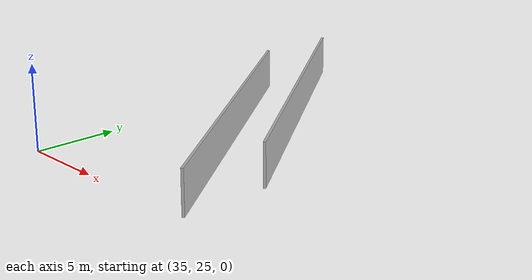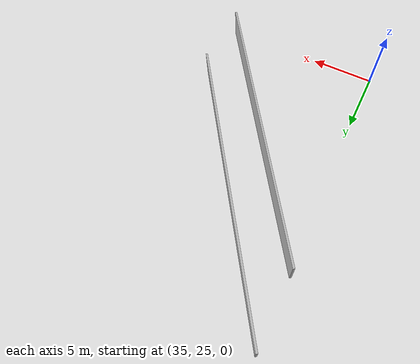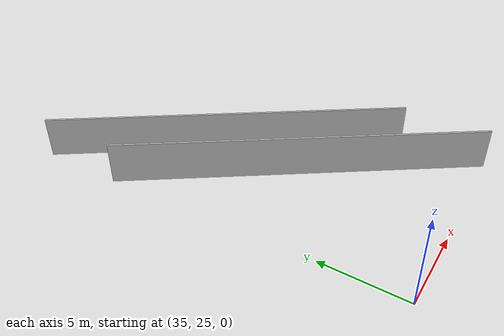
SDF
<?xml version="1.0" ?>
<sdf version="1.6">
  <model name="sps_4926">
    <pose frame="">0 0 0 0 -0 0</pose>
    <static>1</static>
    <self_collide>0</self_collide>
    <allow_auto_disable>0</allow_auto_disable>
    <link name="Wall163">
      <kinematic>0</kinematic>
      <gravity>1</gravity>
      <self_collide>0</self_collide>
      <collision name="collision">
        <geometry>
          <box>
            <size>22.4065 0.15 2.5</size>
          </box>
        </geometry>
        <pose frame="">0 0 0 0 -0 0</pose>
      </collision>
      <visual name="visual">
        <geometry>
          <box>
            <size>22.4065 0.15 2.5</size>
          </box>
        </geometry>
        <pose frame="">0 0 0 0 -0 0</pose>
        <cast_shadows>1</cast_shadows>
        <transparency>0.0</transparency>
      </visual>
      <pose frame="">41.0706 34.1579 1.25 0 -0 2.20088</pose>
    </link>
    <link name="Wall396">
      <kinematic>0</kinematic>
      <gravity>1</gravity>
      <self_collide>0</self_collide>
      <collision name="collision">
        <geometry>
          <box>
            <size>22.4065 0.15 2.5</size>
          </box>
        </geometry>
        <pose frame="">0 0 0 0 -0 0</pose>
      </collision>
      <visual name="visual">
        <geometry>
          <box>
            <size>22.4065 0.15 2.5</size>
          </box>
        </geometry>
        <pose frame="">0 0 0 0 -0 0</pose>
        <cast_shadows>1</cast_shadows>
        <transparency>0.0</transparency>
      </visual>
      <pose frame="">41.0706 39.4191 1.25 0 -0 2.20088</pose>
    </link>
  </model>
</sdf>
